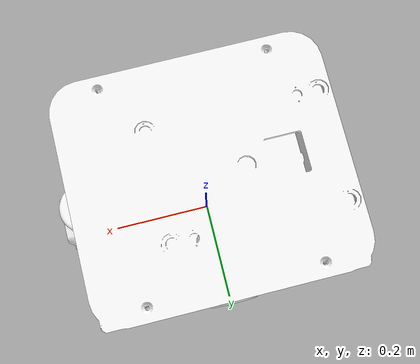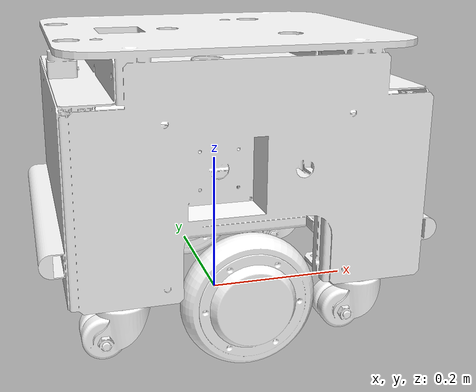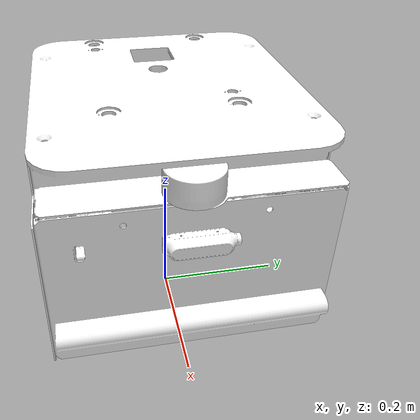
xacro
<?xml version="1.0"?>
<robot xmlns:xacro="http://www.ros.org/wiki/xacro" name="xiaoche">
  <!-- Robot structure exported from the latest URDF data. -->
  <xacro:include filename="$(find my_robot_description)/urdf/xiaoche_shiyan_control.urdf.xacro"/>

  <!-- ros2_control hardware/controller interfaces for the mobile base. -->
  <xacro:include filename="$(find my_robot_description)/urdf/xiaoche_hardware.ros2_control.xacro"/>
</robot>

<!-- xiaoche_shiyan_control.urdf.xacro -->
<robot xmlns:xacro="http://www.ros.org/wiki/xacro">
  <link name="base_footprint">
  </link>
  <joint name="base_joint" type="fixed">
    <parent link="base_footprint" />
    <child link="base_link" />
    <origin xyz="0 0 0" rpy="0 0 0" />
  </joint>
  <link
    name="base_link">
    <inertial>
      <origin
        xyz="0.00291971353695461 -0.00137055396386509 0.247093009152642"
        rpy="0 0 0" />
      <mass
        value="5.71330094696822" />
      <inertia
        ixx="0.0451901760143035"
        ixy="0.000112861110087808"
        ixz="-3.74742789795674E-06"
        iyy="0.0464614381420226"
        iyz="-2.24460034513834E-06"
        izz="0.0750479340967576" />
    </inertial>
    <visual>
      <origin
        xyz="0 0 0"
        rpy="0 0 0" />
      <geometry>
        <mesh
          filename="package://my_robot_description/meshes/base_link.STL" />
      </geometry>
      <material
        name="">
        <color
          rgba="1 1 1 1" />
      </material>
    </visual>
    <collision>
      <origin
        xyz="0 0 0"
        rpy="0 0 0" />
      <geometry>
        <mesh
          filename="package://my_robot_description/meshes/base_link.STL" />
      </geometry>
    </collision>
  </link>
  <link
    name="left_wheel_link">
    <inertial>
      <origin
        xyz="1.9705E-06 4.2704E-08 -0.00091033"
        rpy="0 0 0" />
      <mass
        value="0.94197" />
      <inertia
        ixx="0.0015823"
        ixy="-3.7887E-10"
        ixz="1.0322E-07"
        iyy="0.0015823"
        iyz="3.8949E-11"
        izz="0.0029546" />
    </inertial>
    <visual>
      <origin
        xyz="0 0 0"
        rpy="0 0 0" />
      <geometry>
        <mesh
          filename="package://my_robot_description/meshes/left_wheel_link.STL" />
      </geometry>
      <material
        name="">
        <color
          rgba="1 1 1 1" />
      </material>
    </visual>
    <collision>
      <origin
        xyz="0 0 0"
        rpy="0 0 0" />
      <geometry>
        <mesh
          filename="package://my_robot_description/meshes/left_wheel_link.STL" />
      </geometry>
    </collision>
  </link>
  <joint
    name="base_left_wheel_joint"
    type="continuous">
    <origin
      xyz="-0.0047976 0.1766 0.06604"
      rpy="1.5708 0 3.1416" />
    <parent
      link="base_link" />
    <child
      link="left_wheel_link" />
    <axis
      xyz="0 0 -1" />
  </joint>
  <link
    name="right_wheel_link">
    <inertial>
      <origin
        xyz="-1.9705E-06 -4.2704E-08 -0.00091033"
        rpy="0 0 0" />
      <mass
        value="0.94197" />
      <inertia
        ixx="0.0015823"
        ixy="-3.7887E-10"
        ixz="-1.0322E-07"
        iyy="0.0015823"
        iyz="-3.8949E-11"
        izz="0.0029546" />
    </inertial>
    <visual>
      <origin
        xyz="0 0 0"
        rpy="0 0 0" />
      <geometry>
        <mesh
          filename="package://my_robot_description/meshes/right_wheel_link.STL" />
      </geometry>
      <material
        name="">
        <color
          rgba="1 1 1 1" />
      </material>
    </visual>
    <collision>
      <origin
        xyz="0 0 0"
        rpy="0 0 0" />
      <geometry>
        <mesh
          filename="package://my_robot_description/meshes/right_wheel_link.STL" />
      </geometry>
    </collision>
  </link>
  <joint
    name="base_right_wheel_joint"
    type="continuous">
    <origin
      xyz="-0.0047976 -0.1766 0.06604"
      rpy="1.5708 0 0" />
    <parent
      link="base_link" />
    <child
      link="right_wheel_link" />
    <axis
      xyz="0 0 -1" />
  </joint>
  <link
    name="camera_link">
    <inertial>
      <origin
        xyz="-0.00074797 -2.9971E-05 -0.015771"
        rpy="0 0 0" />
      <mass
        value="0.058736" />
      <inertia
        ixx="4.4134E-06"
        ixy="1.6512E-09"
        ixz="-8.5022E-08"
        iyy="3.4033E-05"
        iyz="-5.5548E-09"
        izz="3.4952E-05" />
    </inertial>
    <visual>
      <origin
        xyz="0 0 0"
        rpy="0 0 0" />
      <geometry>
        <mesh
          filename="package://my_robot_description/meshes/camera_link.STL" />
      </geometry>
      <material
        name="">
        <color
          rgba="1 1 1 1" />
      </material>
    </visual>
    <collision>
      <origin
        xyz="0 0 0"
        rpy="0 0 0" />
      <geometry>
        <mesh
          filename="package://my_robot_description/meshes/camera_link.STL" />
      </geometry>
    </collision>
  </link>
  <joint
    name="camera_joint"
    type="fixed">
    <origin
      xyz="0.24835 0 0.27404"
      rpy="-1.5708 0 -1.5708" />
    <parent
      link="base_link" />
    <child
      link="camera_link" />
    <axis
      xyz="0 0 0" />
  </joint>
  <link
    name="front_lidar_link">
    <inertial>
      <origin
        xyz="-0.0035782 1.6334E-09 0.011632"
        rpy="0 0 0" />
      <mass
        value="0.037432" />
      <inertia
        ixx="2.8051E-05"
        ixy="8.4886E-11"
        ixz="-1.071E-06"
        iyy="3.3615E-05"
        iyz="9.6473E-14"
        izz="4.5086E-05" />
    </inertial>
    <visual>
      <origin
        xyz="0 0 0"
        rpy="0 0 0" />
      <geometry>
        <mesh
          filename="package://my_robot_description/meshes/front_lidar_link.STL" />
      </geometry>
      <material
        name="">
        <color
          rgba="1 1 1 1" />
      </material>
    </visual>
    <collision>
      <origin
        xyz="0 0 0"
        rpy="0 0 0" />
      <geometry>
        <mesh
          filename="package://my_robot_description/meshes/front_lidar_link.STL" />
      </geometry>
    </collision>
  </link>
  <joint
    name="front_lidar_joint"
    type="fixed">
    <origin
      xyz="0.19627 0 0.33151"
      rpy="0 0 0" />
    <parent
      link="base_link" />
    <child
      link="front_lidar_link" />
    <axis
      xyz="0 0 0" />
  </joint>
  <link
    name="behind_lidar_link">
    <inertial>
      <origin
        xyz="-1.2388E-05 -1.0186E-07 -0.0060695"
        rpy="0 0 0" />
      <mass
        value="0.041884" />
      <inertia
        ixx="5.7044E-06"
        ixy="1.0548E-08"
        ixz="-1.4461E-09"
        iyy="5.7155E-06"
        iyz="-6.0699E-12"
        izz="8.786E-06" />
    </inertial>
    <visual>
      <origin
        xyz="0 0 0"
        rpy="0 0 0" />
      <geometry>
        <mesh
          filename="package://my_robot_description/meshes/behind_lidar_link.STL" />
      </geometry>
      <material
        name="">
        <color
          rgba="1 1 1 1" />
      </material>
    </visual>
    <collision>
      <origin
        xyz="0 0 0"
        rpy="0 0 0" />
      <geometry>
        <mesh
          filename="package://my_robot_description/meshes/behind_lidar_link.STL" />
      </geometry>
    </collision>
  </link>
  <joint
    name="behind_lidar_joint"
    type="fixed">
    <origin
      xyz="-0.20605 0 0.34764"
      rpy="0 0 3.1416" />
    <parent
      link="base_link" />
    <child
      link="behind_lidar_link" />
    <axis
      xyz="0 0 0" />
  </joint>
  <link
    name="imu_link">
    <inertial>
      <origin
        xyz="0.00023578 2.774E-07 -0.0056375"
        rpy="0 0 0" />
      <mass
        value="0.021019" />
      <inertia
        ixx="5.3514E-06"
        ixy="1.0633E-10"
        ixz="-4.9204E-09"
        iyy="3.8785E-06"
        iyz="-5.7888E-12"
        izz="8.7994E-06" />
    </inertial>
    <visual>
      <origin
        xyz="0 0 0"
        rpy="0 0 0" />
      <geometry>
        <mesh
          filename="package://my_robot_description/meshes/imu_link.STL" />
      </geometry>
      <material
        name="">
        <color
          rgba="1 1 1 1" />
      </material>
    </visual>
    <collision>
      <origin
        xyz="0 0 0"
        rpy="0 0 0" />
      <geometry>
        <mesh
          filename="package://my_robot_description/meshes/imu_link.STL" />
      </geometry>
    </collision>
  </link>
  <joint
    name="imu_joint"
    type="fixed">
    <origin
      xyz="-0.0055476 0 0.33804"
      rpy="0 0 0" />
    <parent
      link="base_link" />
    <child
      link="imu_link" />
    <axis
      xyz="0 0 0" />
  </joint>
  <link
    name="left_front_caster_wheel_link">
    <inertial>
      <origin
        xyz="-0.011207 0.021255 -0.00012928"
        rpy="0 0 0" />
      <mass
        value="0.2021" />
      <inertia
        ixx="8.0104E-05"
        ixy="2.5182E-06"
        ixz="1.8078E-08"
        iyy="0.00012766"
        iyz="-1.8496E-08"
        izz="9.9394E-05" />
    </inertial>
    <visual>
      <origin
        xyz="0 0 0"
        rpy="0 0 0" />
      <geometry>
        <mesh
          filename="package://my_robot_description/meshes/left_front_caster_wheel_link.STL" />
      </geometry>
      <material
        name="">
        <color
          rgba="1 1 1 1" />
      </material>
    </visual>
    <collision>
      <origin
        xyz="0 0 0"
        rpy="0 0 0" />
      <geometry>
        <mesh
          filename="package://my_robot_description/meshes/left_front_caster_wheel_link.STL" />
      </geometry>
    </collision>
  </link>
  <joint
    name="left_front_caster_wheel_joint"
    type="fixed">
    <origin
      xyz="0.1302 0.143 0.02704"
      rpy="1.5708 0 3.1416" />
    <parent
      link="base_link" />
    <child
      link="left_front_caster_wheel_link" />
    <axis
      xyz="0 0 0" />
  </joint>
  <link
    name="left_behind_caster_wheel_link">
    <inertial>
      <origin
        xyz="0.0112066228503714 0.0212551055418231 0.000129276057644623"
        rpy="0 0 0" />
      <mass
        value="0.202103606932908" />
      <inertia
        ixx="8.01037508849863E-05"
        ixy="-2.5181518638481E-06"
        ixz="1.80773909506051E-08"
        iyy="0.000127664511423408"
        iyz="1.84967539329294E-08"
        izz="9.9393963424474E-05" />
    </inertial>
    <visual>
      <origin
        xyz="0 0 0"
        rpy="0 0 0" />
      <geometry>
        <mesh
          filename="package://my_robot_description/meshes/left_behind_caster_wheel_link.STL" />
      </geometry>
      <material
        name="">
        <color
          rgba="1 1 1 1" />
      </material>
    </visual>
    <collision>
      <origin
        xyz="0 0 0"
        rpy="0 0 0" />
      <geometry>
        <mesh
          filename="package://my_robot_description/meshes/left_behind_caster_wheel_link.STL" />
      </geometry>
    </collision>
  </link>
  <joint
    name="left_behind_caster_wheel_joint"
    type="fixed">
    <origin
      xyz="-0.1398 0.143 0.0275"
      rpy="1.5708 0 3.1416" />
    <parent
      link="base_link" />
    <child
      link="left_behind_caster_wheel_link" />
    <axis
      xyz="0 0 0" />
  </joint>
  <link
    name="right_front_caster_wheel_link">
    <inertial>
      <origin
        xyz="0.011207 0.021255 0.00012928"
        rpy="0 0 0" />
      <mass
        value="0.2021" />
      <inertia
        ixx="8.0104E-05"
        ixy="-2.5182E-06"
        ixz="1.808E-08"
        iyy="0.00012766"
        iyz="1.8494E-08"
        izz="9.9394E-05" />
    </inertial>
    <visual>
      <origin
        xyz="0 0 0"
        rpy="0 0 0" />
      <geometry>
        <mesh
          filename="package://my_robot_description/meshes/right_front_caster_wheel_link.STL" />
      </geometry>
      <material
        name="">
        <color
          rgba="1 1 1 1" />
      </material>
    </visual>
    <collision>
      <origin
        xyz="0 0 0"
        rpy="0 0 0" />
      <geometry>
        <mesh
          filename="package://my_robot_description/meshes/right_front_caster_wheel_link.STL" />
      </geometry>
    </collision>
  </link>
  <joint
    name="right_front_caster_wheel_joint"
    type="fixed">
    <origin
      xyz="0.1302 -0.143 0.02704"
      rpy="1.5708 0 0" />
    <parent
      link="base_link" />
    <child
      link="right_front_caster_wheel_link" />
    <axis
      xyz="0 0 0" />
  </joint>
  <link
    name="right_behind_caster_wheel_link">
    <inertial>
      <origin
        xyz="0.0032066 0.021267 0.00012928"
        rpy="0 0 0" />
      <mass
        value="0.2021" />
      <inertia
        ixx="8.0104E-05"
        ixy="-2.5182E-06"
        ixz="1.8077E-08"
        iyy="0.00012766"
        iyz="1.8497E-08"
        izz="9.9394E-05" />
    </inertial>
    <visual>
      <origin
        xyz="0 0 0"
        rpy="0 0 0" />
      <geometry>
        <mesh
          filename="package://my_robot_description/meshes/right_behind_caster_wheel_link.STL" />
      </geometry>
      <material
        name="">
        <color
          rgba="1 1 1 1" />
      </material>
    </visual>
    <collision>
      <origin
        xyz="0 0 0"
        rpy="0 0 0" />
      <geometry>
        <mesh
          filename="package://my_robot_description/meshes/right_behind_caster_wheel_link.STL" />
      </geometry>
    </collision>
  </link>
  <joint
    name="right_behind_caster_wheel_joint"
    type="fixed">
    <origin
      xyz="-0.1758 -0.143 0.027488"
      rpy="1.5708 0 0" />
    <parent
      link="base_link" />
    <child
      link="right_behind_caster_wheel_link" />
    <axis
      xyz="0 0 0" />
  </joint>
</robot>
